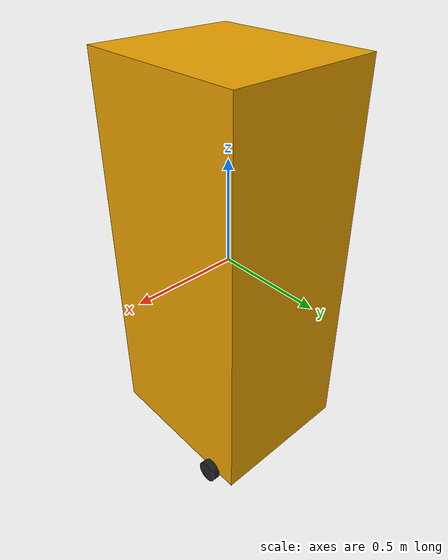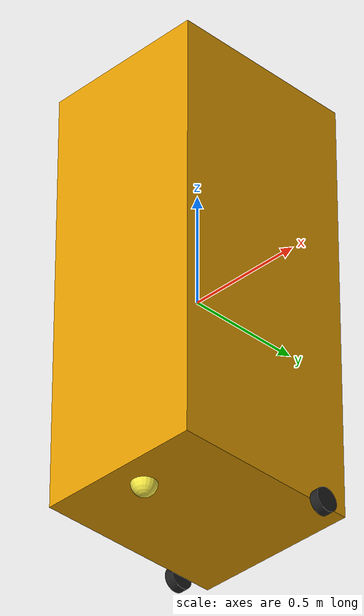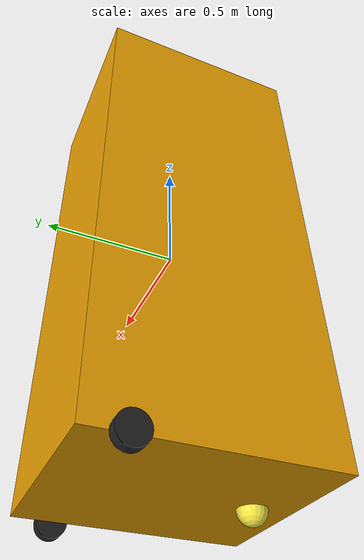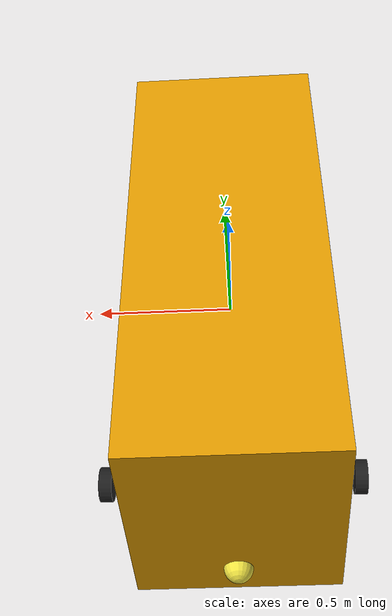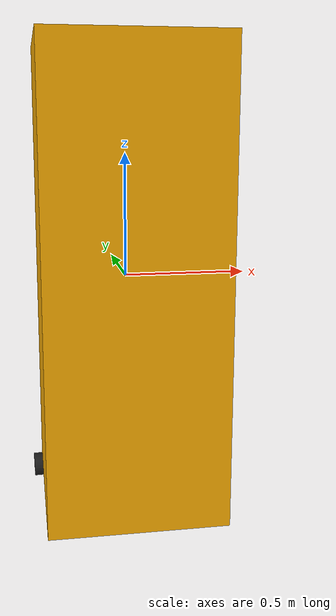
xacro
<?xml version="1.0" ?>
<robot name="nanny"
    xmlns:xacro="http://www.ros.org/wiki/xacro">

    <link name="base_link">
        <visual>
            <origin xyz="0.0 0.0 0.0" rpy="0.0 0.0 0.0"/>
            <geometry>
                <box size="0.7112 0.8128 1.876"/>
            </geometry>
        </visual>
        <collision>
            <origin xyz="0.0 0.0 0.0" rpy="0.0 0.0 0.0"/>
            <geometry>
                <box size="0.7112 0.8128 1.876"/>
            </geometry>
        </collision>
        <inertial>
            <mass value="10.0"/>
            <inertia ixx="0.4" ixy="0.0" ixz="0.0" iyy="0.4" iyz="0.0" izz="0.2"/>
        </inertial>
    </link>

    <link name="right_wheel">
        <visual>
            <origin xyz="0.0 0.0 0.0" rpy="0.0 1.54 0.0"/>
            <geometry>
                <cylinder radius="0.0508" length="0.0381"/>
            </geometry>
        </visual>
        <collision>
            <origin xyz="0.0 0.0 0.0" rpy="0.0 1.54 0.0"/>
            <geometry>
                <cylinder radius="0.0508" length="0.0381"/>
            </geometry>
        </collision>
        <inertial>
            <mass value="5.0"/>
            <inertia ixx="0.4" ixy="0.0" ixz="0.0" iyy="0.4" iyz="0.0" izz="0.2"/>
        </inertial>
    </link>

    <link name="left_wheel">
        <visual>
            <origin xyz="0.0 0.0 0.0" rpy="0.0 1.54 0.0"/>
            <geometry>
                <cylinder radius="0.0508" length="0.0381"/>
            </geometry>
        </visual>
        <collision>
            <origin xyz="0.0 0.0 0.0" rpy="0.0 1.54 0.0"/>
            <geometry>
                <cylinder radius="0.0508" length="0.0381"/>
            </geometry>
        </collision>
        <inertial>
            <mass value="5.0"/>
            <inertia ixx="0.4" ixy="0.0" ixz="0.0" iyy="0.4" iyz="0.0" izz="0.2"/>
        </inertial>
    </link>

    <link name="caster_ball">
        <visual>
            <geometry>
                <sphere radius="0.0508"/>
            </geometry>
        </visual>
        <collision>
            <geometry>
                <sphere radius="0.0508"/>
            </geometry>
        </collision>
        <inertial>
            <mass value="5.0"/>
            <inertia ixx="0.4" ixy="0.0" ixz="0.0" iyy="0.4" iyz="0.0" izz="0.2"/>
        </inertial>
    </link>

    <joint name="base_link_right_wheel" type="continuous">
        <parent link="base_link"/>
        <child link="right_wheel"/>
        <axis xyz="1 0 0"/>
        <origin xyz="${(0.7112 /2 + 0.0381 / 2) * 1} ${0.8128/3} ${(1.876 / 2) * -1}" rpy="0.0 0.0 0.0"/>

    </joint>

    <joint name="base_link_left_wheel" type="continuous">
        <parent link="base_link"/>
        <child link="left_wheel"/>
        <axis xyz="1 0 0"/>
        <origin xyz="${(0.7112 /2 + 0.0381 / 2) * -1} ${0.8128/3} ${(1.876 / 2) * -1}" rpy="0.0 0.0 0.0"/>
    </joint>

    <joint name="base_link_caster_ball" type="continuous">
        <origin xyz="0.0 ${(0.8128/3) * -1} ${(1.876 / 2) * -1}" rpy="0.0 0.0 0.0"/>
        <parent link="base_link"/>
        <child link="caster_ball"/>
        <axis xyz="1 0 0"/>
    </joint>

    <transmission name="right_wheel_trans">
        <type>transmission_interface/SimpleTransmission</type>
        <actuator name="right_wheel_motor">
            <mechanicalReduction>1</mechanicalReduction>
        </actuator>
        <joint name="base_link_right_wheel">
            <hardwareInterface>hardware_interface/VelocityJointInterface</hardwareInterface>
        </joint>
    </transmission>

    <transmission name="left_wheel_trans">
        <type>transmission_interface/SimpleTransmission</type>
        <actuator name="left_wheel_motor">
            <mechanicalReduction>1</mechanicalReduction>
        </actuator>
        <joint name="base_link_left_wheel">
            <hardwareInterface>hardware_interface/VelocityJointInterface</hardwareInterface>
        </joint>
    </transmission>

    <gazebo reference="left_wheel">
        <mu1 value="200.0"/>
        <mu2 value="100.0"/>
        <kp value="10000000.0" />
        <kd value="1.0" />
        <material>Gazebo/Black</material>
    </gazebo>

    <gazebo reference="right_wheel">
        <mu1 value="200.0"/>
        <mu2 value="100.0"/>
        <kp value="10000000.0" />
        <kd value="1.0" />
        <material>Gazebo/Black</material>
    </gazebo>

    <gazebo>
        <plugin name="gazebo_ros_control" filename="libgazebo_ros_control.so">
            <robotNamespace>/</robotNamespace>
        </plugin>
    </gazebo>
</robot>
